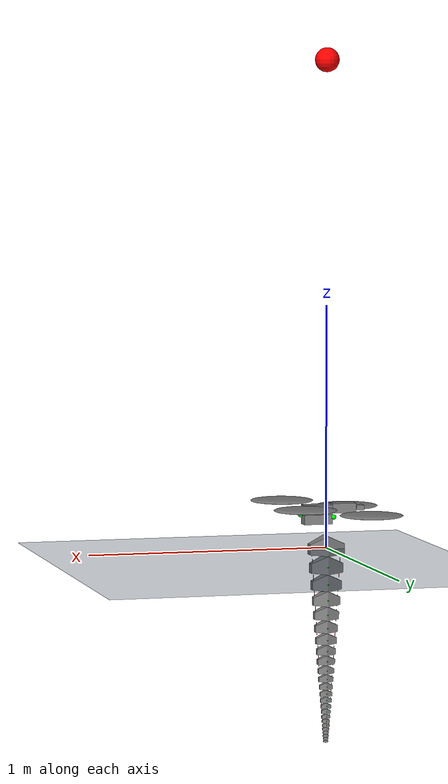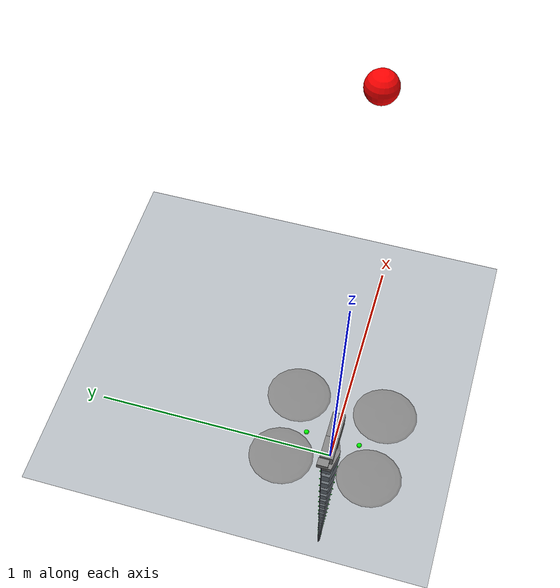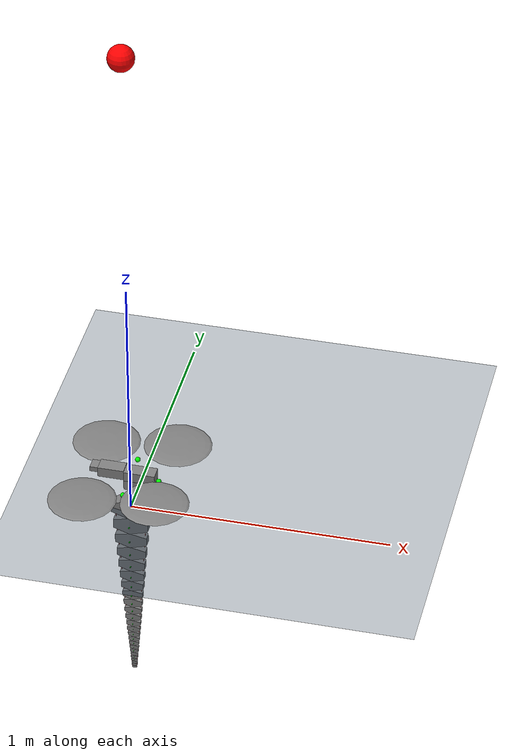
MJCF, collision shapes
<mujoco model="Skydio X2">
<compiler autolimits="true" assetdir="assets" angle="radian"/>
<option timestep="0.001" solver="Newton" iterations="1000" tolerance="1e-18" gravity="0 0 -9.81" integrator="implicitfast" density="1.225" viscosity="1.8e-5"/>
  <size nconmax="1000000"/>
<default>
<default class="x2">
<geom mass="0"/>
<motor ctrlrange="0 13"/>
<default class="visual">
<geom group="2" type="mesh" contype="0" conaffinity="0"/>
</default>
<default class="collision">
<geom group="3" type="box"/>
<default class="rotor">
<geom type="ellipsoid" size=".13 .13 .01"/>
</default>
</default>
<site group="5"/>
</default>
</default>
<asset>
<mesh file="X2_lowpoly.obj" scale="0.01 0.01 0.01"/>
 <mesh name="baselink_1" file="baselink.stl" scale="0.001000000 0.001000000 0.001000000"/>
    <mesh name="baselink_2" file="baselink.stl" scale="0.000914835 0.000914835 0.000914835"/>
    <mesh name="baselink_3" file="baselink.stl" scale="0.000836923 0.000836923 0.000836923"/>
    <mesh name="baselink_4" file="baselink.stl" scale="0.000765646 0.000765646 0.000765646"/>
    <mesh name="baselink_5" file="baselink.stl" scale="0.000700440 0.000700440 0.000700440"/>
    <mesh name="baselink_6" file="baselink.stl" scale="0.000640786 0.000640786 0.000640786"/>
    <mesh name="baselink_7" file="baselink.stl" scale="0.000586214 0.000586214 0.000586214"/>
    <mesh name="baselink_8" file="baselink.stl" scale="0.000536289 0.000536289 0.000536289"/>
    <mesh name="baselink_9" file="baselink.stl" scale="0.000490616 0.000490616 0.000490616"/>
    <mesh name="baselink_10" file="baselink.stl" scale="0.000448832 0.000448832 0.000448832"/>
    <mesh name="baselink_11" file="baselink.stl" scale="0.000410607 0.000410607 0.000410607"/>
    <mesh name="baselink_12" file="baselink.stl" scale="0.000375638 0.000375638 0.000375638"/>
    <mesh name="baselink_13" file="baselink.stl" scale="0.000343647 0.000343647 0.000343647"/>
    <mesh name="baselink_14" file="baselink.stl" scale="0.000314380 0.000314380 0.000314380"/>
    <mesh name="baselink_15" file="baselink.stl" scale="0.000287606 0.000287606 0.000287606"/>
    <mesh name="baselink_16" file="baselink.stl" scale="0.000263112 0.000263112 0.000263112"/>
    <mesh name="baselink_17" file="baselink.stl" scale="0.000240704 0.000240704 0.000240704"/>
    <mesh name="baselink_18" file="baselink.stl" scale="0.000220204 0.000220204 0.000220204"/>
    <mesh name="baselink_19" file="baselink.stl" scale="0.000201450 0.000201450 0.000201450"/>
    <mesh name="baselink_20" file="baselink.stl" scale="0.000184294 0.000184294 0.000184294"/>
    <mesh name="baselink_21" file="baselink.stl" scale="0.000168598 0.000168598 0.000168598"/>
    <mesh name="baselink_22" file="baselink.stl" scale="0.000154240 0.000154240 0.000154240"/>
    <mesh name="baselink_23" file="baselink.stl" scale="0.000141104 0.000141104 0.000141104"/>
    <mesh name="baselink_24" file="baselink.stl" scale="0.000129087 0.000129087 0.000129087"/>

    <texture name="texplane" type="2d" builtin="checker" rgb1=".2 .3 .4" rgb2=".1 0.15 0.2" width="512" height="512" mark="cross" markrgb=".8 .8 .8"/>
    <material name="matplane" reflectance="0.3" texture="texplane" texrepeat="1 1" texuniform="true"/>
<texture type="2d" file="X2_lowpoly_texture_SpinningProps_1024.png"/>
<material name="phong3SG" texture="X2_lowpoly_texture_SpinningProps_1024"/>
<material name="invisible" rgba="0 0 0 0"/>
</asset>
<worldbody>

<geom name="ground" type="plane" size="100 100 1" pos="0 0 0" quat="1 0 0 0" material="matplane" condim="1"/>
<light name="spotlight" mode="targetbodycom" target="x2" pos="0 -1 2"/>
<body name="x2" pos="0 0 0.1" childclass="x2">
<body name="link1" pos="0 0 -0.05" euler="3.14159265359 0 1.57079632679">
      <geom type="mesh" mesh="baselink_1" mass="0.0500"/>
      <site name="s1_1" pos="0.000000000 0.064184961 0.029148720" size="0.01000 0.01000 0.001000"/>
      <site name="s1_2" pos="0.000000000 0.060750162 0.077236146" size="0.001000 0.001000 0.001000"/>
      <site name="s1_3" pos="0.000000000 -0.064184961 0.029148720" size="0.001000 0.001000 0.001000"/>
      <site name="s1_4" pos="0.000000000 -0.060750162 0.077236146" size="0.001000 0.001000 0.001000"/>
   <geom name="marker_1"
      type="cylinder"
      pos="0 0 0.048"
      euler="0 1.57079632679 0"
      size="0.003 0.04"
      rgba="0 1 0 1"
      contype="0" conaffinity="0"/>
      <body name="link2" pos="0 0 0.083166502" >
        <joint type="hinge" axis="1 0 0" range="-0.523598776 0.523598776" stiffness="0.500000" damping="0.300000"/>
        <geom type="mesh" mesh="baselink_2" mass="0.0483"/>
        <site name="s2_1" pos="0.000000000 0.058718635 0.026666263" size="0.000915 0.000915 0.000915"/>
        <site name="s2_2" pos="0.000000000 0.055576362 0.070658313" size="0.000915 0.000915 0.000915"/>
        <site name="s2_3" pos="0.000000000 -0.058718635 0.026666263" size="0.000915 0.000915 0.000915"/>
        <site name="s2_4" pos="0.000000000 -0.055576362 0.070658313" size="0.000915 0.000915 0.000915"/>
        <geom name="marker_2"
          type="cylinder"
          pos="0 0 0.045"
          euler="0 1.57079632679 0"
          size="0.0028 0.038"
          rgba="0 1 0 1"/>
      <body name="link3" pos="0 0 0.076083609">
        <joint type="hinge" axis="1 0 0" range="-0.523598776 0.523598776" stiffness="0.418461" damping="0.274450"/>
        <geom type="mesh" mesh="baselink_3" mass="0.0465"/>
        <site name="s3_1" pos="0.000000000 0.053717850 0.024395225" size="0.000837 0.000837 0.000837"/>
        <site name="s3_2" pos="0.000000000 0.050843189 0.064640683" size="0.000837 0.000837 0.000837"/>
        <site name="s3_3" pos="0.000000000 -0.053717850 0.024395225" size="0.000837 0.000837 0.000837"/>
        <site name="s3_4" pos="0.000000000 -0.050843189 0.064640683" size="0.000837 0.000837 0.000837"/>
        <geom name="marker_3"
      type="cylinder"
      pos="0 0 0.041"
      euler="0 1.57079632679 0"
      size="0.0026 0.036"
      rgba="0 1 0 1"/>

      <body name="link4" pos="0 0 0.069603932">
        <joint type="hinge" axis="1 0 0" range="-0.523598776 0.523598776" stiffness="0.350220" damping="0.251077"/>
        <geom type="mesh" mesh="baselink_4" mass="0.0448"/>
        <site name="s4_1" pos="0.000000000 0.049142958 0.022317600" size="0.000766 0.000766 0.000766"/>
        <site name="s4_2" pos="0.000000000 0.046513118 0.059135545" size="0.000766 0.000766 0.000766"/>
        <site name="s4_3" pos="0.000000000 -0.049142958 0.022317600" size="0.000766 0.000766 0.000766"/>
        <site name="s4_4" pos="0.000000000 -0.046513118 0.059135545" size="0.000766 0.000766 0.000766"/>
        <geom name="marker_4"
      type="cylinder"
      pos="0 0 0.038"
      euler="0 1.57079632679 0"
      size="0.0024 0.034"
      rgba="0 1 0 1"/>

      <body name="link5" pos="0 0 0.063676098">
        <joint type="hinge" axis="1 0 0" range="-0.523598776 0.523598776" stiffness="0.293107" damping="0.229694"/>
        <geom type="mesh" mesh="baselink_5" mass="0.0430"/>
        <site name="s5_1" pos="0.000000000 0.044957687 0.020416917" size="0.000700 0.000700 0.000700"/>
        <site name="s5_2" pos="0.000000000 0.042551818 0.054099254" size="0.000700 0.000700 0.000700"/>
        <site name="s5_3" pos="0.000000000 -0.044957687 0.020416917" size="0.000700 0.000700 0.000700"/>
        <site name="s5_4" pos="0.000000000 -0.042551818 0.054099254" size="0.000700 0.000700 0.000700"/>
        <geom name="marker_5"
      type="cylinder"
      pos="0 0 0.035"
      euler="0 1.57079632679 0"
      size="0.0022 0.032"
      rgba="0 1 0 1"/>

      <body name="link6" pos="0 0 0.058253110">
        <joint type="hinge" axis="1 0 0" range="-0.523598776 0.523598776" stiffness="0.245308" damping="0.210132"/>
        <geom type="mesh" mesh="baselink_6" mass="0.0413"/>
        <site name="s6_1" pos="0.000000000 0.041128856 0.018678106" size="0.000641 0.000641 0.000641"/>
        <site name="s6_2" pos="0.000000000 0.038927883 0.049491879" size="0.000641 0.000641 0.000641"/>
        <site name="s6_3" pos="0.000000000 -0.041128856 0.018678106" size="0.000641 0.000641 0.000641"/>
        <site name="s6_4" pos="0.000000000 -0.038927883 0.049491879" size="0.000641 0.000641 0.000641"/>
        <geom name="marker_6"
      type="cylinder"
      pos="0 0 0.032"
      euler="0 1.57079632679 0"
      size="0.0020 0.030"
      rgba="0 1 0 1"/>

      <body name="link7" pos="0 0 0.053291971">
        <joint type="hinge" axis="1 0 0" range="-0.523598776 0.523598776" stiffness="0.205304" damping="0.192236"/>
        <geom type="mesh" mesh="baselink_7" mass="0.0395"/>
        <site name="s7_1" pos="0.000000000 0.037626108 0.017087381" size="0.000586 0.000586 0.000586"/>
        <site name="s7_2" pos="0.000000000 0.035612582 0.045276893" size="0.000586 0.000586 0.000586"/>
        <site name="s7_3" pos="0.000000000 -0.037626108 0.017087381" size="0.000586 0.000586 0.000586"/>
        <site name="s7_4" pos="0.000000000 -0.035612582 0.045276893" size="0.000586 0.000586 0.000586"/>
        <geom name="marker_7"
      type="cylinder"
      pos="0 0 0.029"
      euler="0 1.57079632679 0"
      size="0.0019 0.028"
      rgba="0 1 0 1"/>

      <body name="link8" pos="0 0 0.048753349">
        <joint type="hinge" axis="1 0 0" range="-0.523598776 0.523598776" stiffness="0.171823" damping="0.175864"/>
        <geom type="mesh" mesh="baselink_8" mass="0.0378"/>
        <site name="s8_1" pos="0.000000000 0.034421673 0.015632130" size="0.000536 0.000536 0.000536"/>
        <site name="s8_2" pos="0.000000000 0.032579629 0.041420877" size="0.000536 0.000536 0.000536"/>
        <site name="s8_3" pos="0.000000000 -0.034421673 0.015632130" size="0.000536 0.000536 0.000536"/>
        <site name="s8_4" pos="0.000000000 -0.032579629 0.041420877" size="0.000536 0.000536 0.000536"/>
        <geom name="marker_8"
      type="cylinder"
      pos="0 0 0.026"
      euler="0 1.57079632679 0"
      size="0.0018 0.026"
      rgba="0 1 0 1"/>

      <body name="link9" pos="0 0 0.044601260">
        <joint type="hinge" axis="1 0 0" range="-0.523598776 0.523598776" stiffness="0.143803" damping="0.160887"/>
        <geom type="mesh" mesh="baselink_9" mass="0.0360"/>
        <site name="s9_1" pos="0.000000000 0.031490143 0.014300817" size="0.000491 0.000491 0.000491"/>
        <site name="s9_2" pos="0.000000000 0.029804978 0.037893259" size="0.000491 0.000491 0.000491"/>
        <site name="s9_3" pos="0.000000000 -0.031490143 0.014300817" size="0.000491 0.000491 0.000491"/>
        <site name="s9_4" pos="0.000000000 -0.029804978 0.037893259" size="0.000491 0.000491 0.000491"/>
        <geom name="marker_9"
      type="cylinder"
      pos="0 0 0.024"
      euler="0 1.57079632679 0"
      size="0.0017 0.024"
      rgba="0 1 0 1"/>

      <body name="link10" pos="0 0 0.040802784">
        <joint type="hinge" axis="1 0 0" range="-0.523598776 0.523598776" stiffness="0.120352" damping="0.147185"/>
        <geom type="mesh" mesh="baselink_10" mass="0.0343"/>
        <site name="s10_1" pos="0.000000000 0.028808279 0.013082885" size="0.000449 0.000449 0.000449"/>
        <site name="s10_2" pos="0.000000000 0.027266630 0.034666071" size="0.000449 0.000449 0.000449"/>
        <site name="s10_3" pos="0.000000000 -0.028808279 0.013082885" size="0.000449 0.000449 0.000449"/>
        <site name="s10_4" pos="0.000000000 -0.027266630 0.034666071" size="0.000449 0.000449 0.000449"/>
        <geom name="marker_10"
      type="cylinder"
      pos="0 0 0.022"
      euler="0 1.57079632679 0"
      size="0.0016 0.022"
      rgba="0 1 0 1"/>

      <body name="link11" pos="0 0 0.037327806">
        <joint type="hinge" axis="1 0 0" range="-0.523598776 0.523598776" stiffness="0.100725" damping="0.134650"/>
        <geom type="mesh" mesh="baselink_11" mass="0.0325"/>
        <site name="s11_1" pos="0.000000000 0.026354815 0.011968678" size="0.000411 0.000411 0.000411"/>
        <site name="s11_2" pos="0.000000000 0.024944462 0.031713728" size="0.000411 0.000411 0.000411"/>
        <site name="s11_3" pos="0.000000000 -0.026354815 0.011968678" size="0.000411 0.000411 0.000411"/>
        <site name="s11_4" pos="0.000000000 -0.024944462 0.031713728" size="0.000411 0.000411 0.000411"/>
        <geom name="marker_11"
      type="cylinder"
      pos="0 0 0.020"
      euler="0 1.57079632679 0"
      size="0.0015 0.020"
      rgba="0 1 0 1"/>

      <body name="link12" pos="0 0 0.034148775">
        <joint type="hinge" axis="1 0 0" range="-0.523598776 0.523598776" stiffness="0.084299" damping="0.123182"/>
        <geom type="mesh" mesh="baselink_12" mass="0.0308"/>
        <site name="s12_1" pos="0.000000000 0.024110302 0.010949363" size="0.000376 0.000376 0.000376"/>
        <site name="s12_2" pos="0.000000000 0.022820062 0.029012821" size="0.000376 0.000376 0.000376"/>
        <site name="s12_3" pos="0.000000000 -0.024110302 0.010949363" size="0.000376 0.000376 0.000376"/>
        <site name="s12_4" pos="0.000000000 -0.022820062 0.029012821" size="0.000376 0.000376 0.000376"/>
        <geom name="marker_12"
      type="cylinder"
      pos="0 0 0.018"
      euler="0 1.57079632679 0"
      size="0.0014 0.018"
      rgba="0 1 0 1"/>

      <body name="link13" pos="0 0 0.031240488">
        <joint type="hinge" axis="1 0 0" range="-0.523598776 0.523598776" stiffness="0.070552" damping="0.112691"/>
        <geom type="mesh" mesh="baselink_13" mass="0.0290"/>
        <site name="s13_1" pos="0.000000000 0.022056943 0.010016858" size="0.000344 0.000344 0.000344"/>
        <site name="s13_2" pos="0.000000000 0.020876586 0.026541938" size="0.000344 0.000344 0.000344"/>
        <site name="s13_3" pos="0.000000000 -0.022056943 0.010016858" size="0.000344 0.000344 0.000344"/>
        <site name="s13_4" pos="0.000000000 -0.020876586 0.026541938" size="0.000344 0.000344 0.000344"/>
        <geom name="marker_13"
      type="cylinder"
      pos="0 0 0.016"
      euler="0 1.57079632679 0"
      size="0.0013 0.016"
      rgba="0 1 0 1"/>

      <body name="link14" pos="0 0 0.028579885">
        <joint type="hinge" axis="1 0 0" range="-0.523598776 0.523598776" stiffness="0.059046" damping="0.103094"/>
        <geom type="mesh" mesh="baselink_14" mass="0.0273"/>
        <site name="s14_1" pos="0.000000000 0.020178459 0.009163770" size="0.000314 0.000314 0.000314"/>
        <site name="s14_2" pos="0.000000000 0.019098627 0.024281488" size="0.000314 0.000314 0.000314"/>
        <site name="s14_3" pos="0.000000000 -0.020178459 0.009163770" size="0.000314 0.000314 0.000314"/>
        <site name="s14_4" pos="0.000000000 -0.019098627 0.024281488" size="0.000314 0.000314 0.000314"/>
        <geom name="marker_14"
      type="cylinder"
      pos="0 0 0.014"
      euler="0 1.57079632679 0"
      size="0.0012 0.014"
      rgba="0 1 0 1"/>

      <body name="link15" pos="0 0 0.026145873">
        <joint type="hinge" axis="1 0 0" range="-0.523598776 0.523598776" stiffness="0.049417" damping="0.094314"/>
        <geom type="mesh" mesh="baselink_15" mass="0.0255"/>
        <site name="s15_1" pos="0.000000000 0.018459956 0.008383336" size="0.000288 0.000288 0.000288"/>
        <site name="s15_2" pos="0.000000000 0.017472088 0.022213550" size="0.000288 0.000288 0.000288"/>
        <site name="s15_3" pos="0.000000000 -0.018459956 0.008383336" size="0.000288 0.000288 0.000288"/>
        <site name="s15_4" pos="0.000000000 -0.017472088 0.022213550" size="0.000288 0.000288 0.000288"/>
        <geom name="marker_15"
      type="cylinder"
      pos="0 0 0.013"
      euler="0 1.57079632679 0"
      size="0.0012 0.013"
      rgba="0 1 0 1"/>

      <body name="link16" pos="0 0 0.023919154">
        <joint type="hinge" axis="1 0 0" range="-0.523598776 0.523598776" stiffness="0.041358" damping="0.086282"/>
        <geom type="mesh" mesh="baselink_16" mass="0.0238"/>
        <site name="s16_1" pos="0.000000000 0.016887810 0.007669367" size="0.000263 0.000263 0.000263"/>
        <site name="s16_2" pos="0.000000000 0.015984074 0.020321729" size="0.000263 0.000263 0.000263"/>
        <site name="s16_3" pos="0.000000000 -0.016887810 0.007669367" size="0.000263 0.000263 0.000263"/>
        <site name="s16_4" pos="0.000000000 -0.015984074 0.020321729" size="0.000263 0.000263 0.000263"/>
        <geom name="marker_16"
      type="cylinder"
      pos="0 0 0.012"
      euler="0 1.57079632679 0"
      size="0.0011 0.012"
      rgba="0 1 0 1"/>

      <body name="link17" pos="0 0 0.021882074">
        <joint type="hinge" axis="1 0 0" range="-0.523598776 0.523598776" stiffness="0.034614" damping="0.078933"/>
        <geom type="mesh" mesh="baselink_17" mass="0.0220"/>
        <site name="s17_1" pos="0.000000000 0.015449556 0.007016204" size="0.000241 0.000241 0.000241"/>
        <site name="s17_2" pos="0.000000000 0.014622787 0.018591024" size="0.000241 0.000241 0.000241"/>
        <site name="s17_3" pos="0.000000000 -0.015449556 0.007016204" size="0.000241 0.000241 0.000241"/>
        <site name="s17_4" pos="0.000000000 -0.014622787 0.018591024" size="0.000241 0.000241 0.000241"/>
        <geom name="marker_17"
      type="cylinder"
      pos="0 0 0.011"
      euler="0 1.57079632679 0"
      size="0.0011 0.011"
      rgba="0 1 0 1"/>

      <body name="link18" pos="0 0 0.020018483">
        <joint type="hinge" axis="1 0 0" range="-0.523598776 0.523598776" stiffness="0.028969" damping="0.072211"/>
        <geom type="mesh" mesh="baselink_18" mass="0.0203"/>
        <site name="s18_1" pos="0.000000000 0.014133791 0.006418667" size="0.000220 0.000220 0.000220"/>
        <site name="s18_2" pos="0.000000000 0.013377434 0.017007716" size="0.000220 0.000220 0.000220"/>
        <site name="s18_3" pos="0.000000000 -0.014133791 0.006418667" size="0.000220 0.000220 0.000220"/>
        <site name="s18_4" pos="0.000000000 -0.013377434 0.017007716" size="0.000220 0.000220 0.000220"/>
        <geom name="marker_18"
      type="cylinder"
      pos="0 0 0.010"
      euler="0 1.57079632679 0"
      size="0.0010 0.010"
      rgba="0 1 0 1"/>

      <body name="link19" pos="0 0 0.018313604">
        <joint type="hinge" axis="1 0 0" range="-0.523598776 0.523598776" stiffness="0.024245" damping="0.066061"/>
        <geom type="mesh" mesh="baselink_19" mass="0.0185"/>
        <site name="s19_1" pos="0.000000000 0.012930084 0.005872020" size="0.000201 0.000201 0.000201"/>
        <site name="s19_2" pos="0.000000000 0.012238142 0.015559250" size="0.000201 0.000201 0.000201"/>
        <site name="s19_3" pos="0.000000000 -0.012930084 0.005872020" size="0.000201 0.000201 0.000201"/>
        <site name="s19_4" pos="0.000000000 -0.012238142 0.015559250" size="0.000201 0.000201 0.000201"/>
        <geom name="marker_19"
      type="cylinder"
      pos="0 0 0.009"
      euler="0 1.57079632679 0"
      size="0.0010 0.009"
      rgba="0 1 0 1"/>

      <body name="link20" pos="0 0 0.016753922">
        <joint type="hinge" axis="1 0 0" range="-0.523598776 0.523598776" stiffness="0.020291" damping="0.060435"/>
        <geom type="mesh" mesh="baselink_20" mass="0.0168"/>
        <site name="s20_1" pos="0.000000000 0.011828890 0.005371928" size="0.000184 0.000184 0.000184"/>
        <site name="s20_2" pos="0.000000000 0.011195878 0.014234143" size="0.000184 0.000184 0.000184"/>
        <site name="s20_3" pos="0.000000000 -0.011828890 0.005371928" size="0.000184 0.000184 0.000184"/>
        <site name="s20_4" pos="0.000000000 -0.011195878 0.014234143" size="0.000184 0.000184 0.000184"/>
        <geom name="marker_20"
      type="cylinder"
      pos="0 0 0.008"
      euler="0 1.57079632679 0"
      size="0.0009 0.008"
      rgba="0 1 0 1"/>

      <body name="link21" pos="0 0 0.015327071">
        <joint type="hinge" axis="1 0 0" range="-0.523598776 0.523598776" stiffness="0.016982" damping="0.055288"/>
        <geom type="mesh" mesh="baselink_21" mass="0.0150"/>
        <site name="s21_1" pos="0.000000000 0.010821480 0.004914427" size="0.000169 0.000169 0.000169"/>
        <site name="s21_2" pos="0.000000000 0.010242379 0.013021889" size="0.000169 0.000169 0.000169"/>
        <site name="s21_3" pos="0.000000000 -0.010821480 0.004914427" size="0.000169 0.000169 0.000169"/>
        <site name="s21_4" pos="0.000000000 -0.010242379 0.013021889" size="0.000169 0.000169 0.000169"/>
        <geom name="marker_21"
      type="cylinder"
      pos="0 0 0.007"
      euler="0 1.57079632679 0"
      size="0.0009 0.007"
      rgba="0 1 0 1"/>

      <body name="link22" pos="0 0 0.014021738">
        <joint type="hinge" axis="1 0 0" range="-0.523598776 0.523598776" stiffness="0.014213" damping="0.050580"/>
        <geom type="mesh" mesh="baselink_22" mass="0.0133"/>
        <site name="s22_1" pos="0.000000000 0.009899867 0.004495889" size="0.000154 0.000154 0.000154"/>
        <site name="s22_2" pos="0.000000000 0.009370085 0.011912877" size="0.000154 0.000154 0.000154"/>
        <site name="s22_3" pos="0.000000000 -0.009899867 0.004495889" size="0.000154 0.000154 0.000154"/>
        <site name="s22_4" pos="0.000000000 -0.009370085 0.011912877" size="0.000154 0.000154 0.000154"/>
        <geom name="marker_22"
      type="cylinder"
      pos="0 0 0.006"
      euler="0 1.57079632679 0"
      size="0.0008 0.006"
      rgba="0 1 0 1"/>

      <body name="link23" pos="0 0 0.012827573">
        <joint type="hinge" axis="1 0 0" range="-0.523598776 0.523598776" stiffness="0.011895" damping="0.046272"/>
        <geom type="mesh" mesh="baselink_23" mass="0.0115"/>
        <site name="s23_1" pos="0.000000000 0.009056742 0.004112995" size="0.000141 0.000141 0.000141"/>
        <site name="s23_2" pos="0.000000000 0.008572079 0.010898314" size="0.000141 0.000141 0.000141"/>
        <site name="s23_3" pos="0.000000000 -0.009056742 0.004112995" size="0.000141 0.000141 0.000141"/>
        <site name="s23_4" pos="0.000000000 -0.008572079 0.010898314" size="0.000141 0.000141 0.000141"/>
        <geom name="marker_23"
      type="cylinder"
      pos="0 0 0.005"
      euler="0 1.57079632679 0"
      size="0.0008 0.005"
      rgba="0 1 0 1"/>

      <body name="link24" pos="0 0 0.011735110">
        <joint type="hinge" axis="1 0 0" range="-0.523598776 0.523598776" stiffness="0.009955" damping="0.042331"/>
        <geom type="mesh" mesh="baselink_24" mass="0.0098"/>
        <site name="s24_1" pos="0.000000000 0.008285423 0.003762711" size="0.000129 0.000129 0.000129"/>
        <site name="s24_2" pos="0.000000000 0.007842036 0.009970157" size="0.000129 0.000129 0.000129"/>
        <site name="s24_3" pos="0.000000000 -0.008285423 0.003762711" size="0.000129 0.000129 0.000129"/>
        <site name="s24_4" pos="0.000000000 -0.007842036 0.009970157" size="0.000129 0.000129 0.000129"/>
        <geom name="marker_24"
      type="cylinder"
      pos="0 0 0.004"
      euler="0 1.57079632679 0"
      size="0.0007 0.004"
      rgba="0 1 0 1"/>

      </body>
      </body>
      </body>
      </body>
      </body>
      </body>
      </body>
      </body>
      </body>
      </body>
      </body>
      </body>
      </body>
      </body>
      </body>
      </body>
      </body>
      </body>
      </body>
      </body>
      </body>
      </body>
      </body>
    </body>
<freejoint/>
<camera name="track" pos="-1 0 .5" xyaxes="0 -1 0 1 0 2" mode="trackcom"/>
<site name="imu" pos="0 0 .02"/>
<geom material="phong3SG" mesh="X2_lowpoly" class="visual" quat="0 0 1 1"/>
<geom class="collision" size=".06 .027 .02" pos=".04 0 .02"/>
<geom class="collision" size=".06 .027 .02" pos=".04 0 .06"/>
<geom class="collision" size=".05 .027 .02" pos="-.07 0 .065"/>
<geom class="collision" size=".023 .017 .01" pos="-.137 .008 .065" quat="1 0 0 1"/>
<geom name="rotor1" class="rotor" pos="-.14 -.18 .05" mass=".25"/>
<geom name="rotor2" class="rotor" pos="-.14 .18 .05" mass=".25"/>
<geom name="rotor3" class="rotor" pos=".14 .18 .08" mass=".25"/>
<geom name="rotor4" class="rotor" pos=".14 -.18 .08" mass=".25"/>
<geom name="marker_25"
      type="sphere"
      pos="0.11 0 0.04"
      size="0.01"
      rgba="0 1 0 1"
      contype="0" conaffinity="0"/>

<geom name="marker_26"
      type="sphere"
      pos="0 0.11 0.04"
      size="0.01"
      rgba="0 1 0 1"
      contype="0" conaffinity="0"/>

<geom name="marker_27"
      type="sphere"
      pos="0 -0.11 0.04"
      size="0.01"
      rgba="0 1 0 1"
      contype="0" conaffinity="0"/>
<geom size=".16 .04 .02" pos="0 0 0.02" type="ellipsoid" mass=".325" class="visual" material="invisible"/>
<site name="thrust1" pos="-.14 -.18 .05"/>
<site name="thrust2" pos="-.14 .18 .05"/>
<site name="thrust3" pos=".14 .18 .08"/>
<site name="thrust4" pos=".14 -.18 .08"/>
</body>

<site name="goal"
      type="sphere"
      size="0.05"
      rgba="1 0 0 1"
      pos="0 0 2"/>

</worldbody>
<tendon>
    <spatial name="tendon1" width="0.0007" frictionloss="0.1" rgba=".95 .3 .3 1" limited="true" range="0.344483943 2.153024644">
      <site site="s1_1"/>
      <site site="s1_2"/>
      <site site="s2_1"/>
      <site site="s2_2"/>
      <site site="s3_1"/>
      <site site="s3_2"/>
      <site site="s4_1"/>
      <site site="s4_2"/>
      <site site="s5_1"/>
      <site site="s5_2"/>
      <site site="s6_1"/>
      <site site="s6_2"/>
      <site site="s7_1"/>
      <site site="s7_2"/>
      <site site="s8_1"/>
      <site site="s8_2"/>
      <site site="s9_1"/>
      <site site="s9_2"/>
      <site site="s10_1"/>
      <site site="s10_2"/>
      <site site="s11_1"/>
      <site site="s11_2"/>
      <site site="s12_1"/>
      <site site="s12_2"/>
      <site site="s13_1"/>
      <site site="s13_2"/>
      <site site="s14_1"/>
      <site site="s14_2"/>
      <site site="s15_1"/>
      <site site="s15_2"/>
      <site site="s16_1"/>
      <site site="s16_2"/>
      <site site="s17_1"/>
      <site site="s17_2"/>
      <site site="s18_1"/>
      <site site="s18_2"/>
      <site site="s19_1"/>
      <site site="s19_2"/>
      <site site="s20_1"/>
      <site site="s20_2"/>
      <site site="s21_1"/>
      <site site="s21_2"/>
      <site site="s22_1"/>
      <site site="s22_2"/>
      <site site="s23_1"/>
      <site site="s23_2"/>
      <site site="s24_1"/>
      <site site="s24_2"/>
    </spatial>
    <spatial name="tendon2" width="0.0007" frictionloss="0.1" rgba=".95 .3 .3 1" limited="true" range="0.344483943 2.153024644">
      <site site="s1_3"/>
      <site site="s1_4"/>
      <site site="s2_3"/>
      <site site="s2_4"/>
      <site site="s3_3"/>
      <site site="s3_4"/>
      <site site="s4_3"/>
      <site site="s4_4"/>
      <site site="s5_3"/>
      <site site="s5_4"/>
      <site site="s6_3"/>
      <site site="s6_4"/>
      <site site="s7_3"/>
      <site site="s7_4"/>
      <site site="s8_3"/>
      <site site="s8_4"/>
      <site site="s9_3"/>
      <site site="s9_4"/>
      <site site="s10_3"/>
      <site site="s10_4"/>
      <site site="s11_3"/>
      <site site="s11_4"/>
      <site site="s12_3"/>
      <site site="s12_4"/>
      <site site="s13_3"/>
      <site site="s13_4"/>
      <site site="s14_3"/>
      <site site="s14_4"/>
      <site site="s15_3"/>
      <site site="s15_4"/>
      <site site="s16_3"/>
      <site site="s16_4"/>
      <site site="s17_3"/>
      <site site="s17_4"/>
      <site site="s18_3"/>
      <site site="s18_4"/>
      <site site="s19_3"/>
      <site site="s19_4"/>
      <site site="s20_3"/>
      <site site="s20_4"/>
      <site site="s21_3"/>
      <site site="s21_4"/>
      <site site="s22_3"/>
      <site site="s22_4"/>
      <site site="s23_3"/>
      <site site="s23_4"/>
      <site site="s24_3"/>
      <site site="s24_4"/>
    </spatial>
  </tendon>
<actuator>

<motor class="x2" name="thrust1" site="thrust1" gear="0 0 1 0 0 -.0201"/>
<motor class="x2" name="thrust2" site="thrust2" gear="0 0 1 0 0 .0201"/>
<motor class="x2" name="thrust3" site="thrust3" gear="0 0 1 0 0 -.0201"/>
<motor class="x2" name="thrust4" site="thrust4" gear="0 0 1 0 0 .0201"/>
    <position name="act1" tendon="tendon1" kp="15" ctrllimited="true" ctrlrange="-1 1" lengthrange="0.185632848 1.160205301"/>
    <position name="act2" tendon="tendon2" kp="15" ctrllimited="true" ctrlrange="-1 1"  lengthrange="0.185632848 1.160205301" />
</actuator>
<sensor>
<gyro name="body_gyro" site="imu"/>
<accelerometer name="body_linacc" site="imu"/>
<framequat name="body_quat" objtype="site" objname="imu"/>
</sensor>
<keyframe>
<key name="hover" qpos="0 0 1.2 1 0 0 0" ctrl="5.0055 5.0055 5.0055 5.0055 0 0 "/>
</keyframe>
</mujoco>
